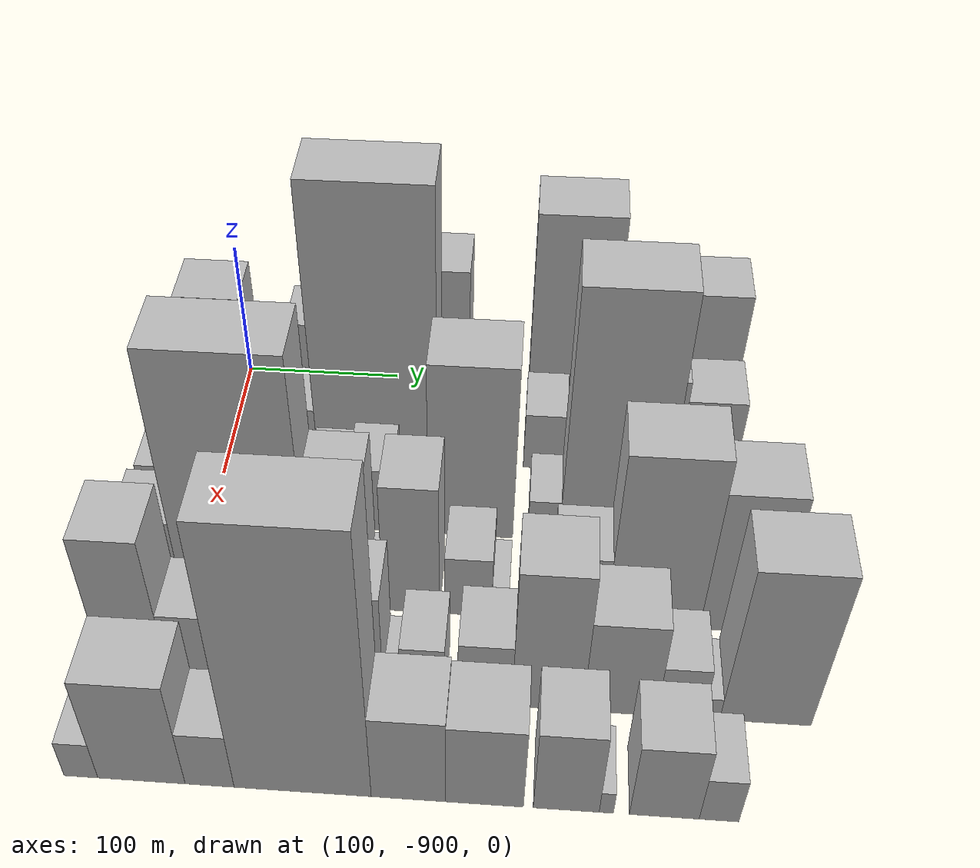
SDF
<sdf version="1.6">
 <world name="default">
  <model name="building_1">
   <static>1</static>
   <pose>100.0000 -918.9162 0 0.000000 0.000000 0.000000</pose>
   <link name="link">
    <pose>0 0 37.50 0 0 0</pose>
    <collision name="collision"><geometry><box><size>40.0000 42.1676 75.0000</size></box></geometry></collision>
    <visual name="visual">
     <cast_shadows>0</cast_shadows>
     <geometry><box><size>40.0000 42.1676 75.0000</size></box></geometry>
     <material>
      <script>
       <uri>model://HANNAS_wall/materials/scripts</uri>
       <uri>model://HANNAS_wall/materials/textures</uri>
       <name>vrc/HANNAS_wall</name>
      </script>
     </material>
    </visual>
   </link>
  </model>
  <model name="building_2">
   <static>1</static>
   <pose>100.0000 -886.9073 0 0.000000 0.000000 0.000000</pose>
   <link name="link">
    <pose>0 0 21.00 0 0 0</pose>
    <collision name="collision"><geometry><box><size>40.0000 21.8500 42.0000</size></box></geometry></collision>
    <visual name="visual">
     <cast_shadows>0</cast_shadows>
     <geometry><box><size>40.0000 21.8500 42.0000</size></box></geometry>
     <material>
      <script>
       <uri>model://HANNAS_wall/materials/scripts</uri>
       <uri>model://HANNAS_wall/materials/textures</uri>
       <name>vrc/HANNAS_wall</name>
      </script>
     </material>
    </visual>
   </link>
  </model>
  <model name="building_3">
   <static>1</static>
   <pose>100.0000 -852.5298 0 0.000000 0.000000 0.000000</pose>
   <link name="link">
    <pose>0 0 28.50 0 0 0</pose>
    <collision name="collision"><geometry><box><size>40.0000 32.9050 57.0000</size></box></geometry></collision>
    <visual name="visual">
     <cast_shadows>0</cast_shadows>
     <geometry><box><size>40.0000 32.9050 57.0000</size></box></geometry>
     <material>
      <script>
       <uri>model://HANNAS_wall/materials/scripts</uri>
       <uri>model://HANNAS_wall/materials/textures</uri>
       <name>vrc/HANNAS_wall</name>
      </script>
     </material>
    </visual>
   </link>
  </model>
  <model name="building_4">
   <static>1</static>
   <pose>100.0000 -819.8504 0 0.000000 0.000000 0.000000</pose>
   <link name="link">
    <pose>0 0 21.00 0 0 0</pose>
    <collision name="collision"><geometry><box><size>40.0000 24.4538 42.0000</size></box></geometry></collision>
    <visual name="visual">
     <cast_shadows>0</cast_shadows>
     <geometry><box><size>40.0000 24.4538 42.0000</size></box></geometry>
     <material>
      <script>
       <uri>model://HANNAS_wall/materials/scripts</uri>
       <uri>model://HANNAS_wall/materials/textures</uri>
       <name>vrc/HANNAS_wall</name>
      </script>
     </material>
    </visual>
   </link>
  </model>
  <model name="building_5">
   <static>1</static>
   <pose>100.0000 -794.7699 0 0.000000 0.000000 0.000000</pose>
   <link name="link">
    <pose>0 0 9.00 0 0 0</pose>
    <collision name="collision"><geometry><box><size>40.0000 7.7071 18.0000</size></box></geometry></collision>
    <visual name="visual">
     <cast_shadows>0</cast_shadows>
     <geometry><box><size>40.0000 7.7071 18.0000</size></box></geometry>
     <material>
      <script>
       <uri>model://HANNAS_wall/materials/scripts</uri>
       <uri>model://HANNAS_wall/materials/textures</uri>
       <name>vrc/HANNAS_wall</name>
      </script>
     </material>
    </visual>
   </link>
  </model>
  <model name="building_6">
   <static>1</static>
   <pose>100.0000 -770.6630 0 0.000000 0.000000 0.000000</pose>
   <link name="link">
    <pose>0 0 52.50 0 0 0</pose>
    <collision name="collision"><geometry><box><size>40.0000 40.5068 105.0000</size></box></geometry></collision>
    <visual name="visual">
     <cast_shadows>0</cast_shadows>
     <geometry><box><size>40.0000 40.5068 105.0000</size></box></geometry>
     <material>
      <script>
       <uri>model://HANNAS_wall/materials/scripts</uri>
       <uri>model://HANNAS_wall/materials/textures</uri>
       <name>vrc/HANNAS_wall</name>
      </script>
     </material>
    </visual>
   </link>
  </model>
  <model name="building_7">
   <static>1</static>
   <pose>100.0000 -730.7436 0 0.000000 0.000000 0.000000</pose>
   <link name="link">
    <pose>0 0 18.00 0 0 0</pose>
    <collision name="collision"><geometry><box><size>40.0000 19.3318 36.0000</size></box></geometry></collision>
    <visual name="visual">
     <cast_shadows>0</cast_shadows>
     <geometry><box><size>40.0000 19.3318 36.0000</size></box></geometry>
     <material>
      <script>
       <uri>model://HANNAS_wall/materials/scripts</uri>
       <uri>model://HANNAS_wall/materials/textures</uri>
       <name>vrc/HANNAS_wall</name>
      </script>
     </material>
    </visual>
   </link>
  </model>
  <model name="building_8">
   <static>1</static>
   <pose>100.0000 -684.5508 0 0.000000 0.000000 0.000000</pose>
   <link name="link">
    <pose>0 0 75.00 0 0 0</pose>
    <collision name="collision"><geometry><box><size>40.0000 53.0539 150.0000</size></box></geometry></collision>
    <visual name="visual">
     <cast_shadows>0</cast_shadows>
     <geometry><box><size>40.0000 53.0539 150.0000</size></box></geometry>
     <material>
      <script>
       <uri>model://HANNAS_wall/materials/scripts</uri>
       <uri>model://HANNAS_wall/materials/textures</uri>
       <name>vrc/HANNAS_wall</name>
      </script>
     </material>
    </visual>
   </link>
  </model>
  <model name="building_9">
   <static>1</static>
   <pose>100.0000 -635.3252 0 0.000000 0.000000 0.000000</pose>
   <link name="link">
    <pose>0 0 30.00 0 0 0</pose>
    <collision name="collision"><geometry><box><size>40.0000 31.3972 60.0000</size></box></geometry></collision>
    <visual name="visual">
     <cast_shadows>0</cast_shadows>
     <geometry><box><size>40.0000 31.3972 60.0000</size></box></geometry>
     <material>
      <script>
       <uri>model://HANNAS_wall/materials/scripts</uri>
       <uri>model://HANNAS_wall/materials/textures</uri>
       <name>vrc/HANNAS_wall</name>
      </script>
     </material>
    </visual>
   </link>
  </model>
  <model name="building_10">
   <static>1</static>
   <pose>100.0000 -595.2459 0 0.000000 0.000000 0.000000</pose>
   <link name="link">
    <pose>0 0 48.00 0 0 0</pose>
    <collision name="collision"><geometry><box><size>40.0000 36.7615 96.0000</size></box></geometry></collision>
    <visual name="visual">
     <cast_shadows>0</cast_shadows>
     <geometry><box><size>40.0000 36.7615 96.0000</size></box></geometry>
     <material>
      <script>
       <uri>model://HANNAS_wall/materials/scripts</uri>
       <uri>model://HANNAS_wall/materials/textures</uri>
       <name>vrc/HANNAS_wall</name>
      </script>
     </material>
    </visual>
   </link>
  </model>
  <model name="building_55">
   <static>1</static>
   <pose>160.0000 -919.1313 0 0.000000 0.000000 0.000000</pose>
   <link name="link">
    <pose>0 0 37.50 0 0 0</pose>
    <collision name="collision"><geometry><box><size>40.0000 41.7373 75.0000</size></box></geometry></collision>
    <visual name="visual">
     <cast_shadows>0</cast_shadows>
     <geometry><box><size>40.0000 41.7373 75.0000</size></box></geometry>
     <material>
      <script>
       <uri>model://HANNAS_wall/materials/scripts</uri>
       <uri>model://HANNAS_wall/materials/textures</uri>
       <name>vrc/HANNAS_wall</name>
      </script>
     </material>
    </visual>
   </link>
  </model>
  <model name="building_56">
   <static>1</static>
   <pose>160.0000 -881.0222 0 0.000000 0.000000 0.000000</pose>
   <link name="link">
    <pose>0 0 31.50 0 0 0</pose>
    <collision name="collision"><geometry><box><size>40.0000 34.4809 63.0000</size></box></geometry></collision>
    <visual name="visual">
     <cast_shadows>0</cast_shadows>
     <geometry><box><size>40.0000 34.4809 63.0000</size></box></geometry>
     <material>
      <script>
       <uri>model://HANNAS_wall/materials/scripts</uri>
       <uri>model://HANNAS_wall/materials/textures</uri>
       <name>vrc/HANNAS_wall</name>
      </script>
     </material>
    </visual>
   </link>
  </model>
  <model name="building_57">
   <static>1</static>
   <pose>160.0000 -853.3646 0 0.000000 0.000000 0.000000</pose>
   <link name="link">
    <pose>0 0 19.50 0 0 0</pose>
    <collision name="collision"><geometry><box><size>40.0000 20.8344 39.0000</size></box></geometry></collision>
    <visual name="visual">
     <cast_shadows>0</cast_shadows>
     <geometry><box><size>40.0000 20.8344 39.0000</size></box></geometry>
     <material>
      <script>
       <uri>model://HANNAS_wall/materials/scripts</uri>
       <uri>model://HANNAS_wall/materials/textures</uri>
       <name>vrc/HANNAS_wall</name>
      </script>
     </material>
    </visual>
   </link>
  </model>
  <model name="building_58">
   <static>1</static>
   <pose>160.0000 -804.7489 0 0.000000 0.000000 0.000000</pose>
   <link name="link">
    <pose>0 0 103.50 0 0 0</pose>
    <collision name="collision"><geometry><box><size>40.0000 76.3969 207.0000</size></box></geometry></collision>
    <visual name="visual">
     <cast_shadows>0</cast_shadows>
     <geometry><box><size>40.0000 76.3969 207.0000</size></box></geometry>
     <material>
      <script>
       <uri>model://HANNAS_wall/materials/scripts</uri>
       <uri>model://HANNAS_wall/materials/textures</uri>
       <name>vrc/HANNAS_wall</name>
      </script>
     </material>
    </visual>
   </link>
  </model>
  <model name="building_59">
   <static>1</static>
   <pose>160.0000 -756.6857 0 0.000000 0.000000 0.000000</pose>
   <link name="link">
    <pose>0 0 18.00 0 0 0</pose>
    <collision name="collision"><geometry><box><size>40.0000 19.7295 36.0000</size></box></geometry></collision>
    <visual name="visual">
     <cast_shadows>0</cast_shadows>
     <geometry><box><size>40.0000 19.7295 36.0000</size></box></geometry>
     <material>
      <script>
       <uri>model://HANNAS_wall/materials/scripts</uri>
       <uri>model://HANNAS_wall/materials/textures</uri>
       <name>vrc/HANNAS_wall</name>
      </script>
     </material>
    </visual>
   </link>
  </model>
  <model name="building_60">
   <static>1</static>
   <pose>160.0000 -729.3834 0 0.000000 0.000000 0.000000</pose>
   <link name="link">
    <pose>0 0 19.50 0 0 0</pose>
    <collision name="collision"><geometry><box><size>40.0000 22.8751 39.0000</size></box></geometry></collision>
    <visual name="visual">
     <cast_shadows>0</cast_shadows>
     <geometry><box><size>40.0000 22.8751 39.0000</size></box></geometry>
     <material>
      <script>
       <uri>model://HANNAS_wall/materials/scripts</uri>
       <uri>model://HANNAS_wall/materials/textures</uri>
       <name>vrc/HANNAS_wall</name>
      </script>
     </material>
    </visual>
   </link>
  </model>
  <model name="building_61">
   <static>1</static>
   <pose>160.0000 -699.0128 0 0.000000 0.000000 0.000000</pose>
   <link name="link">
    <pose>0 0 22.50 0 0 0</pose>
    <collision name="collision"><geometry><box><size>40.0000 25.8661 45.0000</size></box></geometry></collision>
    <visual name="visual">
     <cast_shadows>0</cast_shadows>
     <geometry><box><size>40.0000 25.8661 45.0000</size></box></geometry>
     <material>
      <script>
       <uri>model://HANNAS_wall/materials/scripts</uri>
       <uri>model://HANNAS_wall/materials/textures</uri>
       <name>vrc/HANNAS_wall</name>
      </script>
     </material>
    </visual>
   </link>
  </model>
  <model name="building_62">
   <static>1</static>
   <pose>160.0000 -668.5405 0 0.000000 0.000000 0.000000</pose>
   <link name="link">
    <pose>0 0 15.00 0 0 0</pose>
    <collision name="collision"><geometry><box><size>40.0000 15.0786 30.0000</size></box></geometry></collision>
    <visual name="visual">
     <cast_shadows>0</cast_shadows>
     <geometry><box><size>40.0000 15.0786 30.0000</size></box></geometry>
     <material>
      <script>
       <uri>model://HANNAS_wall/materials/scripts</uri>
       <uri>model://HANNAS_wall/materials/textures</uri>
       <name>vrc/HANNAS_wall</name>
      </script>
     </material>
    </visual>
   </link>
  </model>
  <model name="building_63">
   <static>1</static>
   <pose>160.0000 -638.3200 0 0.000000 0.000000 0.000000</pose>
   <link name="link">
    <pose>0 0 39.00 0 0 0</pose>
    <collision name="collision"><geometry><box><size>40.0000 45.3623 78.0000</size></box></geometry></collision>
    <visual name="visual">
     <cast_shadows>0</cast_shadows>
     <geometry><box><size>40.0000 45.3623 78.0000</size></box></geometry>
     <material>
      <script>
       <uri>model://HANNAS_wall/materials/scripts</uri>
       <uri>model://HANNAS_wall/materials/textures</uri>
       <name>vrc/HANNAS_wall</name>
      </script>
     </material>
    </visual>
   </link>
  </model>
  <model name="building_64">
   <static>1</static>
   <pose>160.0000 -597.8002 0 0.000000 0.000000 0.000000</pose>
   <link name="link">
    <pose>0 0 31.50 0 0 0</pose>
    <collision name="collision"><geometry><box><size>40.0000 35.6772 63.0000</size></box></geometry></collision>
    <visual name="visual">
     <cast_shadows>0</cast_shadows>
     <geometry><box><size>40.0000 35.6772 63.0000</size></box></geometry>
     <material>
      <script>
       <uri>model://HANNAS_wall/materials/scripts</uri>
       <uri>model://HANNAS_wall/materials/textures</uri>
       <name>vrc/HANNAS_wall</name>
      </script>
     </material>
    </visual>
   </link>
  </model>
  <model name="building_109">
   <static>1</static>
   <pose>220.0000 -928.3323 0 0.000000 0.000000 0.000000</pose>
   <link name="link">
    <pose>0 0 22.50 0 0 0</pose>
    <collision name="collision"><geometry><box><size>40.0000 23.3354 45.0000</size></box></geometry></collision>
    <visual name="visual">
     <cast_shadows>0</cast_shadows>
     <geometry><box><size>40.0000 23.3354 45.0000</size></box></geometry>
     <material>
      <script>
       <uri>model://HANNAS_wall/materials/scripts</uri>
       <uri>model://HANNAS_wall/materials/textures</uri>
       <name>vrc/HANNAS_wall</name>
      </script>
     </material>
    </visual>
   </link>
  </model>
  <model name="building_110">
   <static>1</static>
   <pose>220.0000 -901.9848 0 0.000000 0.000000 0.000000</pose>
   <link name="link">
    <pose>0 0 25.50 0 0 0</pose>
    <collision name="collision"><geometry><box><size>40.0000 29.3595 51.0000</size></box></geometry></collision>
    <visual name="visual">
     <cast_shadows>0</cast_shadows>
     <geometry><box><size>40.0000 29.3595 51.0000</size></box></geometry>
     <material>
      <script>
       <uri>model://HANNAS_wall/materials/scripts</uri>
       <uri>model://HANNAS_wall/materials/textures</uri>
       <name>vrc/HANNAS_wall</name>
      </script>
     </material>
    </visual>
   </link>
  </model>
  <model name="building_111">
   <static>1</static>
   <pose>220.0000 -864.9635 0 0.000000 0.000000 0.000000</pose>
   <link name="link">
    <pose>0 0 67.50 0 0 0</pose>
    <collision name="collision"><geometry><box><size>40.0000 44.6831 135.0000</size></box></geometry></collision>
    <visual name="visual">
     <cast_shadows>0</cast_shadows>
     <geometry><box><size>40.0000 44.6831 135.0000</size></box></geometry>
     <material>
      <script>
       <uri>model://HANNAS_wall/materials/scripts</uri>
       <uri>model://HANNAS_wall/materials/textures</uri>
       <name>vrc/HANNAS_wall</name>
      </script>
     </material>
    </visual>
   </link>
  </model>
  <model name="building_112">
   <static>1</static>
   <pose>220.0000 -825.6896 0 0.000000 0.000000 0.000000</pose>
   <link name="link">
    <pose>0 0 22.50 0 0 0</pose>
    <collision name="collision"><geometry><box><size>40.0000 23.8648 45.0000</size></box></geometry></collision>
    <visual name="visual">
     <cast_shadows>0</cast_shadows>
     <geometry><box><size>40.0000 23.8648 45.0000</size></box></geometry>
     <material>
      <script>
       <uri>model://HANNAS_wall/materials/scripts</uri>
       <uri>model://HANNAS_wall/materials/textures</uri>
       <name>vrc/HANNAS_wall</name>
      </script>
     </material>
    </visual>
   </link>
  </model>
  <model name="building_113">
   <static>1</static>
   <pose>220.0000 -800.6557 0 0.000000 0.000000 0.000000</pose>
   <link name="link">
    <pose>0 0 25.50 0 0 0</pose>
    <collision name="collision"><geometry><box><size>40.0000 26.2030 51.0000</size></box></geometry></collision>
    <visual name="visual">
     <cast_shadows>0</cast_shadows>
     <geometry><box><size>40.0000 26.2030 51.0000</size></box></geometry>
     <material>
      <script>
       <uri>model://HANNAS_wall/materials/scripts</uri>
       <uri>model://HANNAS_wall/materials/textures</uri>
       <name>vrc/HANNAS_wall</name>
      </script>
     </material>
    </visual>
   </link>
  </model>
  <model name="building_114">
   <static>1</static>
   <pose>220.0000 -777.2206 0 0.000000 0.000000 0.000000</pose>
   <link name="link">
    <pose>0 0 19.50 0 0 0</pose>
    <collision name="collision"><geometry><box><size>40.0000 20.6672 39.0000</size></box></geometry></collision>
    <visual name="visual">
     <cast_shadows>0</cast_shadows>
     <geometry><box><size>40.0000 20.6672 39.0000</size></box></geometry>
     <material>
      <script>
       <uri>model://HANNAS_wall/materials/scripts</uri>
       <uri>model://HANNAS_wall/materials/textures</uri>
       <name>vrc/HANNAS_wall</name>
      </script>
     </material>
    </visual>
   </link>
  </model>
  <model name="building_115">
   <static>1</static>
   <pose>220.0000 -741.5390 0 0.000000 0.000000 0.000000</pose>
   <link name="link">
    <pose>0 0 67.50 0 0 0</pose>
    <collision name="collision"><geometry><box><size>40.0000 50.6960 135.0000</size></box></geometry></collision>
    <visual name="visual">
     <cast_shadows>0</cast_shadows>
     <geometry><box><size>40.0000 50.6960 135.0000</size></box></geometry>
     <material>
      <script>
       <uri>model://HANNAS_wall/materials/scripts</uri>
       <uri>model://HANNAS_wall/materials/textures</uri>
       <name>vrc/HANNAS_wall</name>
      </script>
     </material>
    </visual>
   </link>
  </model>
  <model name="building_116">
   <static>1</static>
   <pose>220.0000 -697.7606 0 0.000000 0.000000 0.000000</pose>
   <link name="link">
    <pose>0 0 16.50 0 0 0</pose>
    <collision name="collision"><geometry><box><size>40.0000 18.8609 33.0000</size></box></geometry></collision>
    <visual name="visual">
     <cast_shadows>0</cast_shadows>
     <geometry><box><size>40.0000 18.8609 33.0000</size></box></geometry>
     <material>
      <script>
       <uri>model://HANNAS_wall/materials/scripts</uri>
       <uri>model://HANNAS_wall/materials/textures</uri>
       <name>vrc/HANNAS_wall</name>
      </script>
     </material>
    </visual>
   </link>
  </model>
  <model name="building_117">
   <static>1</static>
   <pose>220.0000 -658.4060 0 0.000000 0.000000 0.000000</pose>
   <link name="link">
    <pose>0 0 96.00 0 0 0</pose>
    <collision name="collision"><geometry><box><size>40.0000 59.8482 192.0000</size></box></geometry></collision>
    <visual name="visual">
     <cast_shadows>0</cast_shadows>
     <geometry><box><size>40.0000 59.8482 192.0000</size></box></geometry>
     <material>
      <script>
       <uri>model://HANNAS_wall/materials/scripts</uri>
       <uri>model://HANNAS_wall/materials/textures</uri>
       <name>vrc/HANNAS_wall</name>
      </script>
     </material>
    </visual>
   </link>
  </model>
  <model name="building_118">
   <static>1</static>
   <pose>220.0000 -617.0318 0 0.000000 0.000000 0.000000</pose>
   <link name="link">
    <pose>0 0 9.00 0 0 0</pose>
    <collision name="collision"><geometry><box><size>40.0000 8.9002 18.0000</size></box></geometry></collision>
    <visual name="visual">
     <cast_shadows>0</cast_shadows>
     <geometry><box><size>40.0000 8.9002 18.0000</size></box></geometry>
     <material>
      <script>
       <uri>model://HANNAS_wall/materials/scripts</uri>
       <uri>model://HANNAS_wall/materials/textures</uri>
       <name>vrc/HANNAS_wall</name>
      </script>
     </material>
    </visual>
   </link>
  </model>
  <model name="building_119">
   <static>1</static>
   <pose>220.0000 -601.6146 0 0.000000 0.000000 0.000000</pose>
   <link name="link">
    <pose>0 0 13.50 0 0 0</pose>
    <collision name="collision"><geometry><box><size>40.0000 11.9343 27.0000</size></box></geometry></collision>
    <visual name="visual">
     <cast_shadows>0</cast_shadows>
     <geometry><box><size>40.0000 11.9343 27.0000</size></box></geometry>
     <material>
      <script>
       <uri>model://HANNAS_wall/materials/scripts</uri>
       <uri>model://HANNAS_wall/materials/textures</uri>
       <name>vrc/HANNAS_wall</name>
      </script>
     </material>
    </visual>
   </link>
  </model>
  <model name="building_166">
   <static>1</static>
   <pose>280.0000 -919.8937 0 0.000000 0.000000 0.000000</pose>
   <link name="link">
    <pose>0 0 31.50 0 0 0</pose>
    <collision name="collision"><geometry><box><size>40.0000 32.2125 63.0000</size></box></geometry></collision>
    <visual name="visual">
     <cast_shadows>0</cast_shadows>
     <geometry><box><size>40.0000 32.2125 63.0000</size></box></geometry>
     <material>
      <script>
       <uri>model://HANNAS_wall/materials/scripts</uri>
       <uri>model://HANNAS_wall/materials/textures</uri>
       <name>vrc/HANNAS_wall</name>
      </script>
     </material>
    </visual>
   </link>
  </model>
  <model name="building_167">
   <static>1</static>
   <pose>280.0000 -866.4475 0 0.000000 0.000000 0.000000</pose>
   <link name="link">
    <pose>0 0 94.50 0 0 0</pose>
    <collision name="collision"><geometry><box><size>40.0000 74.6801 189.0000</size></box></geometry></collision>
    <visual name="visual">
     <cast_shadows>0</cast_shadows>
     <geometry><box><size>40.0000 74.6801 189.0000</size></box></geometry>
     <material>
      <script>
       <uri>model://HANNAS_wall/materials/scripts</uri>
       <uri>model://HANNAS_wall/materials/textures</uri>
       <name>vrc/HANNAS_wall</name>
      </script>
     </material>
    </visual>
   </link>
  </model>
  <model name="building_168">
   <static>1</static>
   <pose>280.0000 -812.6711 0 0.000000 0.000000 0.000000</pose>
   <link name="link">
    <pose>0 0 51.00 0 0 0</pose>
    <collision name="collision"><geometry><box><size>40.0000 32.8726 102.0000</size></box></geometry></collision>
    <visual name="visual">
     <cast_shadows>0</cast_shadows>
     <geometry><box><size>40.0000 32.8726 102.0000</size></box></geometry>
     <material>
      <script>
       <uri>model://HANNAS_wall/materials/scripts</uri>
       <uri>model://HANNAS_wall/materials/textures</uri>
       <name>vrc/HANNAS_wall</name>
      </script>
     </material>
    </visual>
   </link>
  </model>
  <model name="building_169">
   <static>1</static>
   <pose>280.0000 -791.8769 0 0.000000 0.000000 0.000000</pose>
   <link name="link">
    <pose>0 0 10.50 0 0 0</pose>
    <collision name="collision"><geometry><box><size>40.0000 8.7158 21.0000</size></box></geometry></collision>
    <visual name="visual">
     <cast_shadows>0</cast_shadows>
     <geometry><box><size>40.0000 8.7158 21.0000</size></box></geometry>
     <material>
      <script>
       <uri>model://HANNAS_wall/materials/scripts</uri>
       <uri>model://HANNAS_wall/materials/textures</uri>
       <name>vrc/HANNAS_wall</name>
      </script>
     </material>
    </visual>
   </link>
  </model>
  <model name="building_170">
   <static>1</static>
   <pose>280.0000 -771.5204 0 0.000000 0.000000 0.000000</pose>
   <link name="link">
    <pose>0 0 51.00 0 0 0</pose>
    <collision name="collision"><geometry><box><size>40.0000 31.9972 102.0000</size></box></geometry></collision>
    <visual name="visual">
     <cast_shadows>0</cast_shadows>
     <geometry><box><size>40.0000 31.9972 102.0000</size></box></geometry>
     <material>
      <script>
       <uri>model://HANNAS_wall/materials/scripts</uri>
       <uri>model://HANNAS_wall/materials/textures</uri>
       <name>vrc/HANNAS_wall</name>
      </script>
     </material>
    </visual>
   </link>
  </model>
  <model name="building_171">
   <static>1</static>
   <pose>280.0000 -739.1095 0 0.000000 0.000000 0.000000</pose>
   <link name="link">
    <pose>0 0 24.00 0 0 0</pose>
    <collision name="collision"><geometry><box><size>40.0000 26.8247 48.0000</size></box></geometry></collision>
    <visual name="visual">
     <cast_shadows>0</cast_shadows>
     <geometry><box><size>40.0000 26.8247 48.0000</size></box></geometry>
     <material>
      <script>
       <uri>model://HANNAS_wall/materials/scripts</uri>
       <uri>model://HANNAS_wall/materials/textures</uri>
       <name>vrc/HANNAS_wall</name>
      </script>
     </material>
    </visual>
   </link>
  </model>
  <model name="building_172">
   <static>1</static>
   <pose>280.0000 -720.9382 0 0.000000 0.000000 0.000000</pose>
   <link name="link">
    <pose>0 0 10.50 0 0 0</pose>
    <collision name="collision"><geometry><box><size>40.0000 9.5177 21.0000</size></box></geometry></collision>
    <visual name="visual">
     <cast_shadows>0</cast_shadows>
     <geometry><box><size>40.0000 9.5177 21.0000</size></box></geometry>
     <material>
      <script>
       <uri>model://HANNAS_wall/materials/scripts</uri>
       <uri>model://HANNAS_wall/materials/textures</uri>
       <name>vrc/HANNAS_wall</name>
      </script>
     </material>
    </visual>
   </link>
  </model>
  <model name="building_173">
   <static>1</static>
   <pose>280.0000 -705.3701 0 0.000000 0.000000 0.000000</pose>
   <link name="link">
    <pose>0 0 10.50 0 0 0</pose>
    <collision name="collision"><geometry><box><size>40.0000 9.6185 21.0000</size></box></geometry></collision>
    <visual name="visual">
     <cast_shadows>0</cast_shadows>
     <geometry><box><size>40.0000 9.6185 21.0000</size></box></geometry>
     <material>
      <script>
       <uri>model://HANNAS_wall/materials/scripts</uri>
       <uri>model://HANNAS_wall/materials/textures</uri>
       <name>vrc/HANNAS_wall</name>
      </script>
     </material>
    </visual>
   </link>
  </model>
  <model name="building_174">
   <static>1</static>
   <pose>280.0000 -676.1766 0 0.000000 0.000000 0.000000</pose>
   <link name="link">
    <pose>0 0 27.00 0 0 0</pose>
    <collision name="collision"><geometry><box><size>40.0000 30.7687 54.0000</size></box></geometry></collision>
    <visual name="visual">
     <cast_shadows>0</cast_shadows>
     <geometry><box><size>40.0000 30.7687 54.0000</size></box></geometry>
     <material>
      <script>
       <uri>model://HANNAS_wall/materials/scripts</uri>
       <uri>model://HANNAS_wall/materials/textures</uri>
       <name>vrc/HANNAS_wall</name>
      </script>
     </material>
    </visual>
   </link>
  </model>
  <model name="building_175">
   <static>1</static>
   <pose>280.0000 -634.3873 0 0.000000 0.000000 0.000000</pose>
   <link name="link">
    <pose>0 0 67.50 0 0 0</pose>
    <collision name="collision"><geometry><box><size>40.0000 52.8098 135.0000</size></box></geometry></collision>
    <visual name="visual">
     <cast_shadows>0</cast_shadows>
     <geometry><box><size>40.0000 52.8098 135.0000</size></box></geometry>
     <material>
      <script>
       <uri>model://HANNAS_wall/materials/scripts</uri>
       <uri>model://HANNAS_wall/materials/textures</uri>
       <name>vrc/HANNAS_wall</name>
      </script>
     </material>
    </visual>
   </link>
  </model>
  <model name="building_176">
   <static>1</static>
   <pose>280.0000 -586.9316 0 0.000000 0.000000 0.000000</pose>
   <link name="link">
    <pose>0 0 55.50 0 0 0</pose>
    <collision name="collision"><geometry><box><size>40.0000 42.1018 111.0000</size></box></geometry></collision>
    <visual name="visual">
     <cast_shadows>0</cast_shadows>
     <geometry><box><size>40.0000 42.1018 111.0000</size></box></geometry>
     <material>
      <script>
       <uri>model://HANNAS_wall/materials/scripts</uri>
       <uri>model://HANNAS_wall/materials/textures</uri>
       <name>vrc/HANNAS_wall</name>
      </script>
     </material>
    </visual>
   </link>
  </model>
  <model name="building_215">
   <static>1</static>
   <pose>340.0000 -915.3143 0 0.000000 0.000000 0.000000</pose>
   <link name="link">
    <pose>0 0 58.50 0 0 0</pose>
    <collision name="collision"><geometry><box><size>40.0000 35.3715 117.0000</size></box></geometry></collision>
    <visual name="visual">
     <cast_shadows>0</cast_shadows>
     <geometry><box><size>40.0000 35.3715 117.0000</size></box></geometry>
     <material>
      <script>
       <uri>model://HANNAS_wall/materials/scripts</uri>
       <uri>model://HANNAS_wall/materials/textures</uri>
       <name>vrc/HANNAS_wall</name>
      </script>
     </material>
    </visual>
   </link>
  </model>
  <model name="building_216">
   <static>1</static>
   <pose>340.0000 -880.4019 0 0.000000 0.000000 0.000000</pose>
   <link name="link">
    <pose>0 0 30.00 0 0 0</pose>
    <collision name="collision"><geometry><box><size>40.0000 34.4532 60.0000</size></box></geometry></collision>
    <visual name="visual">
     <cast_shadows>0</cast_shadows>
     <geometry><box><size>40.0000 34.4532 60.0000</size></box></geometry>
     <material>
      <script>
       <uri>model://HANNAS_wall/materials/scripts</uri>
       <uri>model://HANNAS_wall/materials/textures</uri>
       <name>vrc/HANNAS_wall</name>
      </script>
     </material>
    </visual>
   </link>
  </model>
  <model name="building_217">
   <static>1</static>
   <pose>340.0000 -841.2976 0 0.000000 0.000000 0.000000</pose>
   <link name="link">
    <pose>0 0 25.50 0 0 0</pose>
    <collision name="collision"><geometry><box><size>40.0000 25.7554 51.0000</size></box></geometry></collision>
    <visual name="visual">
     <cast_shadows>0</cast_shadows>
     <geometry><box><size>40.0000 25.7554 51.0000</size></box></geometry>
     <material>
      <script>
       <uri>model://HANNAS_wall/materials/scripts</uri>
       <uri>model://HANNAS_wall/materials/textures</uri>
       <name>vrc/HANNAS_wall</name>
      </script>
     </material>
    </visual>
   </link>
  </model>
  <model name="building_218">
   <static>1</static>
   <pose>340.0000 -804.5926 0 0.000000 0.000000 0.000000</pose>
   <link name="link">
    <pose>0 0 42.00 0 0 0</pose>
    <collision name="collision"><geometry><box><size>40.0000 47.6546 84.0000</size></box></geometry></collision>
    <visual name="visual">
     <cast_shadows>0</cast_shadows>
     <geometry><box><size>40.0000 47.6546 84.0000</size></box></geometry>
     <material>
      <script>
       <uri>model://HANNAS_wall/materials/scripts</uri>
       <uri>model://HANNAS_wall/materials/textures</uri>
       <name>vrc/HANNAS_wall</name>
      </script>
     </material>
    </visual>
   </link>
  </model>
  <model name="building_219">
   <static>1</static>
   <pose>340.0000 -776.2530 0 0.000000 0.000000 0.000000</pose>
   <link name="link">
    <pose>0 0 10.50 0 0 0</pose>
    <collision name="collision"><geometry><box><size>40.0000 9.0247 21.0000</size></box></geometry></collision>
    <visual name="visual">
     <cast_shadows>0</cast_shadows>
     <geometry><box><size>40.0000 9.0247 21.0000</size></box></geometry>
     <material>
      <script>
       <uri>model://HANNAS_wall/materials/scripts</uri>
       <uri>model://HANNAS_wall/materials/textures</uri>
       <name>vrc/HANNAS_wall</name>
      </script>
     </material>
    </visual>
   </link>
  </model>
  <model name="building_220">
   <static>1</static>
   <pose>340.0000 -759.7838 0 0.000000 0.000000 0.000000</pose>
   <link name="link">
    <pose>0 0 22.50 0 0 0</pose>
    <collision name="collision"><geometry><box><size>40.0000 23.9137 45.0000</size></box></geometry></collision>
    <visual name="visual">
     <cast_shadows>0</cast_shadows>
     <geometry><box><size>40.0000 23.9137 45.0000</size></box></geometry>
     <material>
      <script>
       <uri>model://HANNAS_wall/materials/scripts</uri>
       <uri>model://HANNAS_wall/materials/textures</uri>
       <name>vrc/HANNAS_wall</name>
      </script>
     </material>
    </visual>
   </link>
  </model>
  <model name="building_221">
   <static>1</static>
   <pose>340.0000 -726.2046 0 0.000000 0.000000 0.000000</pose>
   <link name="link">
    <pose>0 0 25.50 0 0 0</pose>
    <collision name="collision"><geometry><box><size>40.0000 29.2446 51.0000</size></box></geometry></collision>
    <visual name="visual">
     <cast_shadows>0</cast_shadows>
     <geometry><box><size>40.0000 29.2446 51.0000</size></box></geometry>
     <material>
      <script>
       <uri>model://HANNAS_wall/materials/scripts</uri>
       <uri>model://HANNAS_wall/materials/textures</uri>
       <name>vrc/HANNAS_wall</name>
      </script>
     </material>
    </visual>
   </link>
  </model>
  <model name="building_222">
   <static>1</static>
   <pose>340.0000 -692.5305 0 0.000000 0.000000 0.000000</pose>
   <link name="link">
    <pose>0 0 55.50 0 0 0</pose>
    <collision name="collision"><geometry><box><size>40.0000 38.1037 111.0000</size></box></geometry></collision>
    <visual name="visual">
     <cast_shadows>0</cast_shadows>
     <geometry><box><size>40.0000 38.1037 111.0000</size></box></geometry>
     <material>
      <script>
       <uri>model://HANNAS_wall/materials/scripts</uri>
       <uri>model://HANNAS_wall/materials/textures</uri>
       <name>vrc/HANNAS_wall</name>
      </script>
     </material>
    </visual>
   </link>
  </model>
  <model name="building_223">
   <static>1</static>
   <pose>340.0000 -653.7952 0 0.000000 0.000000 0.000000</pose>
   <link name="link">
    <pose>0 0 37.50 0 0 0</pose>
    <collision name="collision"><geometry><box><size>40.0000 39.3669 75.0000</size></box></geometry></collision>
    <visual name="visual">
     <cast_shadows>0</cast_shadows>
     <geometry><box><size>40.0000 39.3669 75.0000</size></box></geometry>
     <material>
      <script>
       <uri>model://HANNAS_wall/materials/scripts</uri>
       <uri>model://HANNAS_wall/materials/textures</uri>
       <name>vrc/HANNAS_wall</name>
      </script>
     </material>
    </visual>
   </link>
  </model>
  <model name="building_224">
   <static>1</static>
   <pose>340.0000 -621.6849 0 0.000000 0.000000 0.000000</pose>
   <link name="link">
    <pose>0 0 21.00 0 0 0</pose>
    <collision name="collision"><geometry><box><size>40.0000 24.8537 42.0000</size></box></geometry></collision>
    <visual name="visual">
     <cast_shadows>0</cast_shadows>
     <geometry><box><size>40.0000 24.8537 42.0000</size></box></geometry>
     <material>
      <script>
       <uri>model://HANNAS_wall/materials/scripts</uri>
       <uri>model://HANNAS_wall/materials/textures</uri>
       <name>vrc/HANNAS_wall</name>
      </script>
     </material>
    </visual>
   </link>
  </model>
  <model name="building_225">
   <static>1</static>
   <pose>340.0000 -604.9641 0 0.000000 0.000000 0.000000</pose>
   <link name="link">
    <pose>0 0 9.00 0 0 0</pose>
    <collision name="collision"><geometry><box><size>40.0000 8.5881 18.0000</size></box></geometry></collision>
    <visual name="visual">
     <cast_shadows>0</cast_shadows>
     <geometry><box><size>40.0000 8.5881 18.0000</size></box></geometry>
     <material>
      <script>
       <uri>model://HANNAS_wall/materials/scripts</uri>
       <uri>model://HANNAS_wall/materials/textures</uri>
       <name>vrc/HANNAS_wall</name>
      </script>
     </material>
    </visual>
   </link>
  </model>
  <model name="building_226">
   <static>1</static>
   <pose>340.0000 -576.5546 0 0.000000 0.000000 0.000000</pose>
   <link name="link">
    <pose>0 0 61.50 0 0 0</pose>
    <collision name="collision"><geometry><box><size>40.0000 48.2308 123.0000</size></box></geometry></collision>
    <visual name="visual">
     <cast_shadows>0</cast_shadows>
     <geometry><box><size>40.0000 48.2308 123.0000</size></box></geometry>
     <material>
      <script>
       <uri>model://HANNAS_wall/materials/scripts</uri>
       <uri>model://HANNAS_wall/materials/textures</uri>
       <name>vrc/HANNAS_wall</name>
      </script>
     </material>
    </visual>
   </link>
  </model>
  <model name="building_265">
   <static>1</static>
   <pose>400.0000 -931.1431 0 0.000000 0.000000 0.000000</pose>
   <link name="link">
    <pose>0 0 15.00 0 0 0</pose>
    <collision name="collision"><geometry><box><size>40.0000 17.7138 30.0000</size></box></geometry></collision>
    <visual name="visual">
     <cast_shadows>0</cast_shadows>
     <geometry><box><size>40.0000 17.7138 30.0000</size></box></geometry>
     <material>
      <script>
       <uri>model://HANNAS_wall/materials/scripts</uri>
       <uri>model://HANNAS_wall/materials/textures</uri>
       <name>vrc/HANNAS_wall</name>
      </script>
     </material>
    </visual>
   </link>
  </model>
  <model name="building_266">
   <static>1</static>
   <pose>400.0000 -899.4908 0 0.000000 0.000000 0.000000</pose>
   <link name="link">
    <pose>0 0 42.00 0 0 0</pose>
    <collision name="collision"><geometry><box><size>40.0000 45.5909 84.0000</size></box></geometry></collision>
    <visual name="visual">
     <cast_shadows>0</cast_shadows>
     <geometry><box><size>40.0000 45.5909 84.0000</size></box></geometry>
     <material>
      <script>
       <uri>model://HANNAS_wall/materials/scripts</uri>
       <uri>model://HANNAS_wall/materials/textures</uri>
       <name>vrc/HANNAS_wall</name>
      </script>
     </material>
    </visual>
   </link>
  </model>
  <model name="building_267">
   <static>1</static>
   <pose>400.0000 -863.9962 0 0.000000 0.000000 0.000000</pose>
   <link name="link">
    <pose>0 0 22.50 0 0 0</pose>
    <collision name="collision"><geometry><box><size>40.0000 25.3984 45.0000</size></box></geometry></collision>
    <visual name="visual">
     <cast_shadows>0</cast_shadows>
     <geometry><box><size>40.0000 25.3984 45.0000</size></box></geometry>
     <material>
      <script>
       <uri>model://HANNAS_wall/materials/scripts</uri>
       <uri>model://HANNAS_wall/materials/textures</uri>
       <name>vrc/HANNAS_wall</name>
      </script>
     </material>
    </visual>
   </link>
  </model>
  <model name="building_268">
   <static>1</static>
   <pose>400.0000 -815.9698 0 0.000000 0.000000 0.000000</pose>
   <link name="link">
    <pose>0 0 102.00 0 0 0</pose>
    <collision name="collision"><geometry><box><size>40.0000 70.6544 204.0000</size></box></geometry></collision>
    <visual name="visual">
     <cast_shadows>0</cast_shadows>
     <geometry><box><size>40.0000 70.6544 204.0000</size></box></geometry>
     <material>
      <script>
       <uri>model://HANNAS_wall/materials/scripts</uri>
       <uri>model://HANNAS_wall/materials/textures</uri>
       <name>vrc/HANNAS_wall</name>
      </script>
     </material>
    </visual>
   </link>
  </model>
  <model name="building_269">
   <static>1</static>
   <pose>400.0000 -761.6562 0 0.000000 0.000000 0.000000</pose>
   <link name="link">
    <pose>0 0 34.50 0 0 0</pose>
    <collision name="collision"><geometry><box><size>40.0000 37.9728 69.0000</size></box></geometry></collision>
    <visual name="visual">
     <cast_shadows>0</cast_shadows>
     <geometry><box><size>40.0000 37.9728 69.0000</size></box></geometry>
     <material>
      <script>
       <uri>model://HANNAS_wall/materials/scripts</uri>
       <uri>model://HANNAS_wall/materials/textures</uri>
       <name>vrc/HANNAS_wall</name>
      </script>
     </material>
    </visual>
   </link>
  </model>
  <model name="building_270">
   <static>1</static>
   <pose>400.0000 -722.9247 0 0.000000 0.000000 0.000000</pose>
   <link name="link">
    <pose>0 0 33.00 0 0 0</pose>
    <collision name="collision"><geometry><box><size>40.0000 39.4902 66.0000</size></box></geometry></collision>
    <visual name="visual">
     <cast_shadows>0</cast_shadows>
     <geometry><box><size>40.0000 39.4902 66.0000</size></box></geometry>
     <material>
      <script>
       <uri>model://HANNAS_wall/materials/scripts</uri>
       <uri>model://HANNAS_wall/materials/textures</uri>
       <name>vrc/HANNAS_wall</name>
      </script>
     </material>
    </visual>
   </link>
  </model>
  <model name="building_271">
   <static>1</static>
   <pose>400.0000 -681.5553 0 0.000000 0.000000 0.000000</pose>
   <link name="link">
    <pose>0 0 33.00 0 0 0</pose>
    <collision name="collision"><geometry><box><size>40.0000 33.2486 66.0000</size></box></geometry></collision>
    <visual name="visual">
     <cast_shadows>0</cast_shadows>
     <geometry><box><size>40.0000 33.2486 66.0000</size></box></geometry>
     <material>
      <script>
       <uri>model://HANNAS_wall/materials/scripts</uri>
       <uri>model://HANNAS_wall/materials/textures</uri>
       <name>vrc/HANNAS_wall</name>
      </script>
     </material>
    </visual>
   </link>
  </model>
  <model name="building_272">
   <static>1</static>
   <pose>400.0000 -661.3282 0 0.000000 0.000000 0.000000</pose>
   <link name="link">
    <pose>0 0 9.00 0 0 0</pose>
    <collision name="collision"><geometry><box><size>40.0000 7.2055 18.0000</size></box></geometry></collision>
    <visual name="visual">
     <cast_shadows>0</cast_shadows>
     <geometry><box><size>40.0000 7.2055 18.0000</size></box></geometry>
     <material>
      <script>
       <uri>model://HANNAS_wall/materials/scripts</uri>
       <uri>model://HANNAS_wall/materials/textures</uri>
       <name>vrc/HANNAS_wall</name>
      </script>
     </material>
    </visual>
   </link>
  </model>
  <model name="building_273">
   <static>1</static>
   <pose>400.0000 -632.2648 0 0.000000 0.000000 0.000000</pose>
   <link name="link">
    <pose>0 0 30.00 0 0 0</pose>
    <collision name="collision"><geometry><box><size>40.0000 34.9212 60.0000</size></box></geometry></collision>
    <visual name="visual">
     <cast_shadows>0</cast_shadows>
     <geometry><box><size>40.0000 34.9212 60.0000</size></box></geometry>
     <material>
      <script>
       <uri>model://HANNAS_wall/materials/scripts</uri>
       <uri>model://HANNAS_wall/materials/textures</uri>
       <name>vrc/HANNAS_wall</name>
      </script>
     </material>
    </visual>
   </link>
  </model>
  <model name="building_274">
   <static>1</static>
   <pose>400.0000 -604.9255 0 0.000000 0.000000 0.000000</pose>
   <link name="link">
    <pose>0 0 18.00 0 0 0</pose>
    <collision name="collision"><geometry><box><size>40.0000 19.7574 36.0000</size></box></geometry></collision>
    <visual name="visual">
     <cast_shadows>0</cast_shadows>
     <geometry><box><size>40.0000 19.7574 36.0000</size></box></geometry>
     <material>
      <script>
       <uri>model://HANNAS_wall/materials/scripts</uri>
       <uri>model://HANNAS_wall/materials/textures</uri>
       <name>vrc/HANNAS_wall</name>
      </script>
     </material>
    </visual>
   </link>
  </model>
 </world>
</sdf>
